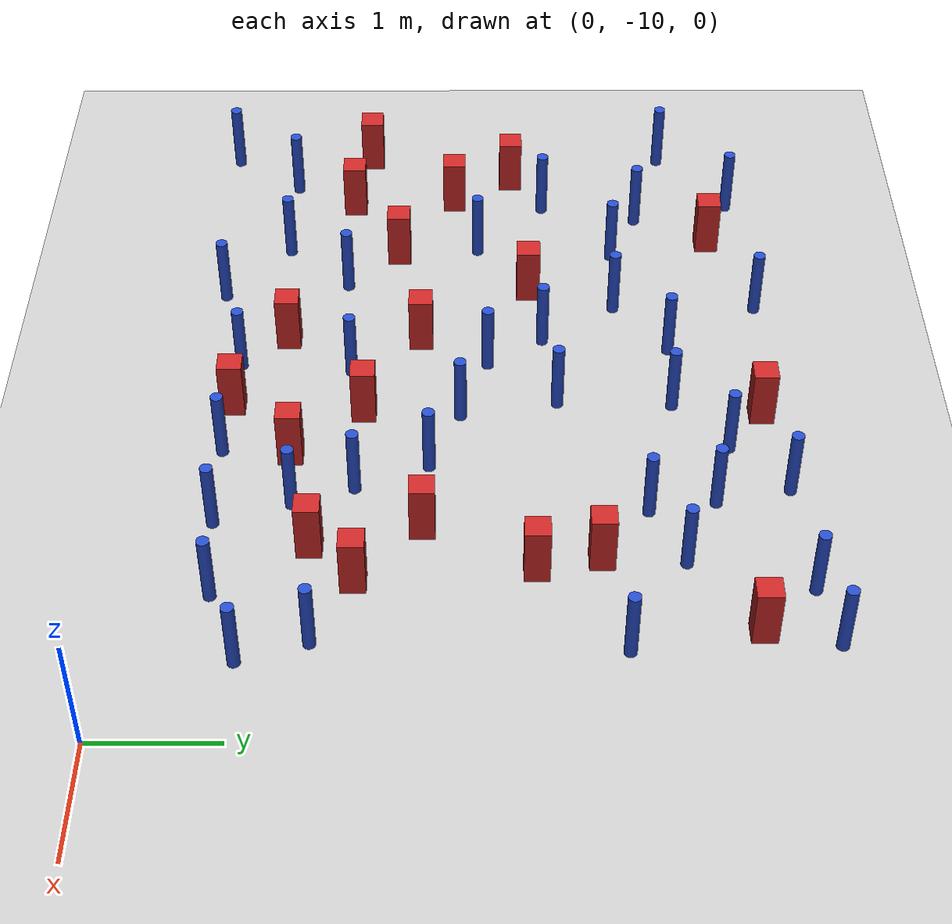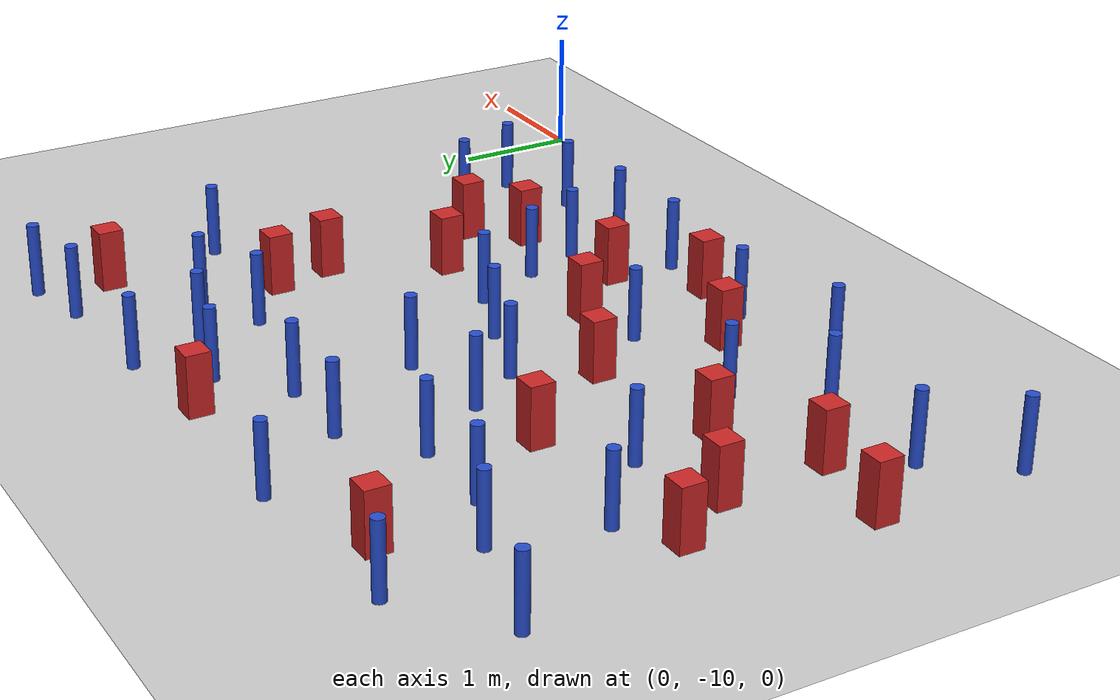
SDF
<sdf version="1.6">
 <world name="default">
  <model name="ground_plane">
   <static>1</static>
   <link name="link">
    <collision name="collision">
     <geometry><plane><normal>0 0 1</normal><size>100 100</size></plane></geometry>
     <surface><friction><ode><mu>100</mu><mu2>50</mu2></ode></friction></surface>
    </collision>
    <visual name="visual">
     <cast_shadows>0</cast_shadows>
     <geometry><plane><normal>0 0 1</normal><size>100 100</size></plane></geometry>
     <material>
      <ambient>1.0 1.0 1.0 1.0</ambient>
      <diffuse>0.8 0.8 0.8 1.0</diffuse>
      <specular>0.01 0.01 0.01 1.000000</specular>
     </material>
    </visual>
   </link>
  </model>
  <model name="square_post_obstacle4">
   <static>true</static>
   <pose>-3.38604297422 -4.9030827757 8.22691968438e-08 7.22125133819e-06 -7.54495500217e-07 2.29674213826e-05</pose>
   <link name="link">
    <pose>0 0 0.25 0 -0 0</pose>
    <inertial>
     <mass>100</mass>
     <inertia>
      <ixx>0.166667</ixx>
      <ixy>0</ixy>
      <ixz>0</ixz>
      <iyy>0.166667</iyy>
      <iyz>0</iyz>
      <izz>0.166667</izz>
     </inertia>
    </inertial>
    <collision name="collision"><geometry><box><size>.2 .2 .5</size></box></geometry></collision>
    <visual name="visual">
     <geometry><box><size>.2 .2 .5</size></box></geometry>
     <material>
      <script><name>Gazebo/Red</name><uri>file://media/materials/scripts/gazebo.material</uri></script>
     </material>
    </visual>
   </link>
  </model>
  <model name="pole_obstacle5">
   <static>true</static>
   <pose>-4.0076121832 -9.21498597755 2.88873142074e-08 -9.90536689695e-09 4.60219948993e-07 -1.20965994957e-07</pose>
   <link name="link">
    <pose>0 0 0.3 0 -0 0</pose>
    <inertial>
     <mass>1</mass>
     <inertia><ixx>0.145833</ixx><ixy>0</ixy><ixz>0</ixz><iyy>0.145833</iyy><iyz>0</iyz><izz>0.125</izz></inertia>
    </inertial>
    <collision name="collision">
     <geometry><cylinder><radius>0.05</radius><length>.6</length></cylinder></geometry>
    </collision>
    <visual name="visual">
     <geometry><cylinder><radius>0.05</radius><length>.6</length></cylinder></geometry>
     <material>
      <script><name>Gazebo/Blue</name><uri>file://media/materials/scripts/gazebo.material</uri></script>
     </material>
    </visual>
   </link>
  </model>
  <model name="square_post_obstacle8">
   <static>true</static>
   <pose>-1.00973284408 -5.13634790479 8.22691968438e-08 7.2212513382e-06 -7.54495500217e-07 2.29674213826e-05</pose>
   <link name="link">
    <pose>0 0 0.25 0 -0 0</pose>
    <inertial>
     <mass>100</mass>
     <inertia>
      <ixx>0.166667</ixx>
      <ixy>0</ixy>
      <ixz>0</ixz>
      <iyy>0.166667</iyy>
      <iyz>0</iyz>
      <izz>0.166667</izz>
     </inertia>
    </inertial>
    <collision name="collision"><geometry><box><size>.2 .2 .5</size></box></geometry></collision>
    <visual name="visual">
     <geometry><box><size>.2 .2 .5</size></box></geometry>
     <material>
      <script><name>Gazebo/Red</name><uri>file://media/materials/scripts/gazebo.material</uri></script>
     </material>
    </visual>
   </link>
  </model>
  <model name="square_post_obstacle9">
   <static>true</static>
   <pose>-1.50824096841 -8.1657535437 8.22691968438e-08 7.22125133819e-06 -7.54495500217e-07 2.29674213826e-05</pose>
   <link name="link">
    <pose>0 0 0.25 0 -0 0</pose>
    <inertial>
     <mass>100</mass>
     <inertia>
      <ixx>0.166667</ixx>
      <ixy>0</ixy>
      <ixz>0</ixz>
      <iyy>0.166667</iyy>
      <iyz>0</iyz>
      <izz>0.166667</izz>
     </inertia>
    </inertial>
    <collision name="collision"><geometry><box><size>.2 .2 .5</size></box></geometry></collision>
    <visual name="visual">
     <geometry><box><size>.2 .2 .5</size></box></geometry>
     <material>
      <script><name>Gazebo/Red</name><uri>file://media/materials/scripts/gazebo.material</uri></script>
     </material>
    </visual>
   </link>
  </model>
  <model name="pole_obstacle8">
   <static>true</static>
   <pose>-6.98964618681 -5.51536909973 2.88873142074e-08 -9.90536690842e-09 4.60219948965e-07 -1.20965994976e-07</pose>
   <link name="link">
    <pose>0 0 0.3 0 -0 0</pose>
    <inertial>
     <mass>1</mass>
     <inertia><ixx>0.145833</ixx><ixy>0</ixy><ixz>0</ixz><iyy>0.145833</iyy><iyz>0</iyz><izz>0.125</izz></inertia>
    </inertial>
    <collision name="collision">
     <geometry><cylinder><radius>0.05</radius><length>.6</length></cylinder></geometry>
    </collision>
    <visual name="visual">
     <geometry><cylinder><radius>0.05</radius><length>.6</length></cylinder></geometry>
     <material>
      <script><name>Gazebo/Blue</name><uri>file://media/materials/scripts/gazebo.material</uri></script>
     </material>
    </visual>
   </link>
  </model>
  <model name="pole_obstacle10">
   <static>true</static>
   <pose>-4.7581580819 -4.81862895062 2.88873142074e-08 -9.90536690842e-09 4.60219948965e-07 -1.20965994976e-07</pose>
   <link name="link">
    <pose>0 0 0.3 0 -0 0</pose>
    <inertial>
     <mass>1</mass>
     <inertia><ixx>0.145833</ixx><ixy>0</ixy><ixz>0</ixz><iyy>0.145833</iyy><iyz>0</iyz><izz>0.125</izz></inertia>
    </inertial>
    <collision name="collision">
     <geometry><cylinder><radius>0.05</radius><length>.6</length></cylinder></geometry>
    </collision>
    <visual name="visual">
     <geometry><cylinder><radius>0.05</radius><length>.6</length></cylinder></geometry>
     <material>
      <script><name>Gazebo/Blue</name><uri>file://media/materials/scripts/gazebo.material</uri></script>
     </material>
    </visual>
   </link>
  </model>
  <model name="pole_obstacle11">
   <static>true</static>
   <pose>-5.08012012069 -8.36202532371 2.88873142074e-08 -9.9053668967e-09 4.60219948993e-07 -1.20965994957e-07</pose>
   <link name="link">
    <pose>0 0 0.3 0 -0 0</pose>
    <inertial>
     <mass>1</mass>
     <inertia><ixx>0.145833</ixx><ixy>0</ixy><ixz>0</ixz><iyy>0.145833</iyy><iyz>0</iyz><izz>0.125</izz></inertia>
    </inertial>
    <collision name="collision">
     <geometry><cylinder><radius>0.05</radius><length>.6</length></cylinder></geometry>
    </collision>
    <visual name="visual">
     <geometry><cylinder><radius>0.05</radius><length>.6</length></cylinder></geometry>
     <material>
      <script><name>Gazebo/Blue</name><uri>file://media/materials/scripts/gazebo.material</uri></script>
     </material>
    </visual>
   </link>
  </model>
  <model name="square_post_obstacle20">
   <static>true</static>
   <pose>-5.6932536082 -5.16046962616 8.22691968438e-08 7.22125133819e-06 -7.54495500217e-07 2.29674213826e-05</pose>
   <link name="link">
    <pose>0 0 0.25 0 -0 0</pose>
    <inertial>
     <mass>100</mass>
     <inertia>
      <ixx>0.166667</ixx>
      <ixy>0</ixy>
      <ixz>0</ixz>
      <iyy>0.166667</iyy>
      <iyz>0</iyz>
      <izz>0.166667</izz>
     </inertia>
    </inertial>
    <collision name="collision"><geometry><box><size>.2 .2 .5</size></box></geometry></collision>
    <visual name="visual">
     <geometry><box><size>.2 .2 .5</size></box></geometry>
     <material>
      <script><name>Gazebo/Red</name><uri>file://media/materials/scripts/gazebo.material</uri></script>
     </material>
    </visual>
   </link>
  </model>
  <model name="square_post_obstacle25">
   <static>true</static>
   <pose>-4.33340341161 -8.83346983936 8.22691968438e-08 7.22125133819e-06 -7.54495500217e-07 2.29674213826e-05</pose>
   <link name="link">
    <pose>0 0 0.25 0 -0 0</pose>
    <inertial>
     <mass>100</mass>
     <inertia>
      <ixx>0.166667</ixx>
      <ixy>0</ixy>
      <ixz>0</ixz>
      <iyy>0.166667</iyy>
      <iyz>0</iyz>
      <izz>0.166667</izz>
     </inertia>
    </inertial>
    <collision name="collision"><geometry><box><size>.2 .2 .5</size></box></geometry></collision>
    <visual name="visual">
     <geometry><box><size>.2 .2 .5</size></box></geometry>
     <material>
      <script><name>Gazebo/Red</name><uri>file://media/materials/scripts/gazebo.material</uri></script>
     </material>
    </visual>
   </link>
  </model>
  <model name="pole_obstacle18">
   <static>true</static>
   <pose>-3.52627339107 -6.57142891999 2.88873142074e-08 -9.90536689859e-09 4.60219948989e-07 -1.20965994961e-07</pose>
   <link name="link">
    <pose>0 0 0.3 0 -0 0</pose>
    <inertial>
     <mass>1</mass>
     <inertia><ixx>0.145833</ixx><ixy>0</ixy><ixz>0</ixz><iyy>0.145833</iyy><iyz>0</iyz><izz>0.125</izz></inertia>
    </inertial>
    <collision name="collision">
     <geometry><cylinder><radius>0.05</radius><length>.6</length></cylinder></geometry>
    </collision>
    <visual name="visual">
     <geometry><cylinder><radius>0.05</radius><length>.6</length></cylinder></geometry>
     <material>
      <script><name>Gazebo/Blue</name><uri>file://media/materials/scripts/gazebo.material</uri></script>
     </material>
    </visual>
   </link>
  </model>
  <model name="pole_obstacle19">
   <static>true</static>
   <pose>-2.25952722871 -5.89378732629 2.88873142074e-08 -9.90536689859e-09 4.60219948989e-07 -1.20965994961e-07</pose>
   <link name="link">
    <pose>0 0 0.3 0 -0 0</pose>
    <inertial>
     <mass>1</mass>
     <inertia><ixx>0.145833</ixx><ixy>0</ixy><ixz>0</ixz><iyy>0.145833</iyy><iyz>0</iyz><izz>0.125</izz></inertia>
    </inertial>
    <collision name="collision">
     <geometry><cylinder><radius>0.05</radius><length>.6</length></cylinder></geometry>
    </collision>
    <visual name="visual">
     <geometry><cylinder><radius>0.05</radius><length>.6</length></cylinder></geometry>
     <material>
      <script><name>Gazebo/Blue</name><uri>file://media/materials/scripts/gazebo.material</uri></script>
     </material>
    </visual>
   </link>
  </model>
  <model name="square_post_obstacle35">
   <static>true</static>
   <pose>-1.7408760265 -6.28655073493 8.22691968438e-08 7.2212513382e-06 -7.54495500217e-07 2.29674213826e-05</pose>
   <link name="link">
    <pose>0 0 0.25 0 -0 0</pose>
    <inertial>
     <mass>100</mass>
     <inertia>
      <ixx>0.166667</ixx>
      <ixy>0</ixy>
      <ixz>0</ixz>
      <iyy>0.166667</iyy>
      <iyz>0</iyz>
      <izz>0.166667</izz>
     </inertia>
    </inertial>
    <collision name="collision"><geometry><box><size>.2 .2 .5</size></box></geometry></collision>
    <visual name="visual">
     <geometry><box><size>.2 .2 .5</size></box></geometry>
     <material>
      <script><name>Gazebo/Red</name><uri>file://media/materials/scripts/gazebo.material</uri></script>
     </material>
    </visual>
   </link>
  </model>
  <model name="pole_obstacle36">
   <static>true</static>
   <pose>-2.13922580885 -9.28516308419 2.88873142074e-08 -9.90536692318e-09 4.6021994893e-07 -1.20965994988e-07</pose>
   <link name="link">
    <pose>0 0 0.3 0 -0 0</pose>
    <inertial>
     <mass>1</mass>
     <inertia><ixx>0.145833</ixx><ixy>0</ixy><ixz>0</ixz><iyy>0.145833</iyy><iyz>0</iyz><izz>0.125</izz></inertia>
    </inertial>
    <collision name="collision">
     <geometry><cylinder><radius>0.05</radius><length>.6</length></cylinder></geometry>
    </collision>
    <visual name="visual">
     <geometry><cylinder><radius>0.05</radius><length>.6</length></cylinder></geometry>
     <material>
      <script><name>Gazebo/Blue</name><uri>file://media/materials/scripts/gazebo.material</uri></script>
     </material>
    </visual>
   </link>
  </model>
  <model name="square_post_obstacle36">
   <static>true</static>
   <pose>-6.63683368596 -6.91825801913 8.22691968438e-08 7.22125133819e-06 -7.54495500217e-07 2.29674213826e-05</pose>
   <link name="link">
    <pose>0 0 0.25 0 -0 0</pose>
    <inertial>
     <mass>100</mass>
     <inertia>
      <ixx>0.166667</ixx>
      <ixy>0</ixy>
      <ixz>0</ixz>
      <iyy>0.166667</iyy>
      <iyz>0</iyz>
      <izz>0.166667</izz>
     </inertia>
    </inertial>
    <collision name="collision"><geometry><box><size>.2 .2 .5</size></box></geometry></collision>
    <visual name="visual">
     <geometry><box><size>.2 .2 .5</size></box></geometry>
     <material>
      <script><name>Gazebo/Red</name><uri>file://media/materials/scripts/gazebo.material</uri></script>
     </material>
    </visual>
   </link>
  </model>
  <model name="pole_obstacle40">
   <static>true</static>
   <pose>-5.58109486869 -8.90177024138 2.88873142074e-08 -9.9053668967e-09 4.60219948993e-07 -1.20965994957e-07</pose>
   <link name="link">
    <pose>0 0 0.3 0 -0 0</pose>
    <inertial>
     <mass>1</mass>
     <inertia><ixx>0.145833</ixx><ixy>0</ixy><ixz>0</ixz><iyy>0.145833</iyy><iyz>0</iyz><izz>0.125</izz></inertia>
    </inertial>
    <collision name="collision">
     <geometry><cylinder><radius>0.05</radius><length>.6</length></cylinder></geometry>
    </collision>
    <visual name="visual">
     <geometry><cylinder><radius>0.05</radius><length>.6</length></cylinder></geometry>
     <material>
      <script><name>Gazebo/Blue</name><uri>file://media/materials/scripts/gazebo.material</uri></script>
     </material>
    </visual>
   </link>
  </model>
  <model name="pole_obstacle50">
   <static>true</static>
   <pose>-4.33049621309 -6.6751644631 2.88873142074e-08 -9.90536690842e-09 4.60219948965e-07 -1.20965994976e-07</pose>
   <link name="link">
    <pose>0 0 0.3 0 -0 0</pose>
    <inertial>
     <mass>1</mass>
     <inertia><ixx>0.145833</ixx><ixy>0</ixy><ixz>0</ixz><iyy>0.145833</iyy><iyz>0</iyz><izz>0.125</izz></inertia>
    </inertial>
    <collision name="collision">
     <geometry><cylinder><radius>0.05</radius><length>.6</length></cylinder></geometry>
    </collision>
    <visual name="visual">
     <geometry><cylinder><radius>0.05</radius><length>.6</length></cylinder></geometry>
     <material>
      <script><name>Gazebo/Blue</name><uri>file://media/materials/scripts/gazebo.material</uri></script>
     </material>
    </visual>
   </link>
  </model>
  <model name="square_post_obstacle54">
   <static>true</static>
   <pose>-2.06954725274 -7.65669839443 8.22691968438e-08 7.22125133819e-06 -7.54495500217e-07 2.29674213826e-05</pose>
   <link name="link">
    <pose>0 0 0.25 0 -0 0</pose>
    <inertial>
     <mass>100</mass>
     <inertia>
      <ixx>0.166667</ixx>
      <ixy>0</ixy>
      <ixz>0</ixz>
      <iyy>0.166667</iyy>
      <iyz>0</iyz>
      <izz>0.166667</izz>
     </inertia>
    </inertial>
    <collision name="collision"><geometry><box><size>.2 .2 .5</size></box></geometry></collision>
    <visual name="visual">
     <geometry><box><size>.2 .2 .5</size></box></geometry>
     <material>
      <script><name>Gazebo/Red</name><uri>file://media/materials/scripts/gazebo.material</uri></script>
     </material>
    </visual>
   </link>
  </model>
  <model name="square_post_obstacle57">
   <static>true</static>
   <pose>-3.40886149084 -8.15950958121 8.22691968438e-08 7.22125133819e-06 -7.54495500217e-07 2.29674213826e-05</pose>
   <link name="link">
    <pose>0 0 0.25 0 -0 0</pose>
    <inertial>
     <mass>100</mass>
     <inertia>
      <ixx>0.166667</ixx>
      <ixy>0</ixy>
      <ixz>0</ixz>
      <iyy>0.166667</iyy>
      <iyz>0</iyz>
      <izz>0.166667</izz>
     </inertia>
    </inertial>
    <collision name="collision"><geometry><box><size>.2 .2 .5</size></box></geometry></collision>
    <visual name="visual">
     <geometry><box><size>.2 .2 .5</size></box></geometry>
     <material>
      <script><name>Gazebo/Red</name><uri>file://media/materials/scripts/gazebo.material</uri></script>
     </material>
    </visual>
   </link>
  </model>
  <model name="pole_obstacle63">
   <static>true</static>
   <pose>-3.49381040476 -5.62563364195 2.88873142074e-08 -9.90536689859e-09 4.60219948989e-07 -1.20965994961e-07</pose>
   <link name="link">
    <pose>0 0 0.3 0 -0 0</pose>
    <inertial>
     <mass>1</mass>
     <inertia><ixx>0.145833</ixx><ixy>0</ixy><ixz>0</ixz><iyy>0.145833</iyy><iyz>0</iyz><izz>0.125</izz></inertia>
    </inertial>
    <collision name="collision">
     <geometry><cylinder><radius>0.05</radius><length>.6</length></cylinder></geometry>
    </collision>
    <visual name="visual">
     <geometry><cylinder><radius>0.05</radius><length>.6</length></cylinder></geometry>
     <material>
      <script><name>Gazebo/Blue</name><uri>file://media/materials/scripts/gazebo.material</uri></script>
     </material>
    </visual>
   </link>
  </model>
  <model name="square_post_obstacle72">
   <static>true</static>
   <pose>-6.24935014309 -8.34504986974 8.22691968438e-08 7.22125133819e-06 -7.54495500217e-07 2.29674213826e-05</pose>
   <link name="link">
    <pose>0 0 0.25 0 -0 0</pose>
    <inertial>
     <mass>100</mass>
     <inertia>
      <ixx>0.166667</ixx>
      <ixy>0</ixy>
      <ixz>0</ixz>
      <iyy>0.166667</iyy>
      <iyz>0</iyz>
      <izz>0.166667</izz>
     </inertia>
    </inertial>
    <collision name="collision"><geometry><box><size>.2 .2 .5</size></box></geometry></collision>
    <visual name="visual">
     <geometry><box><size>.2 .2 .5</size></box></geometry>
     <material>
      <script><name>Gazebo/Red</name><uri>file://media/materials/scripts/gazebo.material</uri></script>
     </material>
    </visual>
   </link>
  </model>
  <model name="pole_obstacle71">
   <static>true</static>
   <pose>-6.04131828479 -5.78652419856 2.88873142074e-08 -9.90536690842e-09 4.60219948965e-07 -1.20965994976e-07</pose>
   <link name="link">
    <pose>0 0 0.3 0 -0 0</pose>
    <inertial>
     <mass>1</mass>
     <inertia><ixx>0.145833</ixx><ixy>0</ixy><ixz>0</ixz><iyy>0.145833</iyy><iyz>0</iyz><izz>0.125</izz></inertia>
    </inertial>
    <collision name="collision">
     <geometry><cylinder><radius>0.05</radius><length>.6</length></cylinder></geometry>
    </collision>
    <visual name="visual">
     <geometry><cylinder><radius>0.05</radius><length>.6</length></cylinder></geometry>
     <material>
      <script><name>Gazebo/Blue</name><uri>file://media/materials/scripts/gazebo.material</uri></script>
     </material>
    </visual>
   </link>
  </model>
  <model name="square_post_obstacle76">
   <static>true</static>
   <pose>-5.50835516522 -7.92259290468 8.22691968438e-08 7.2212513382e-06 -7.54495500217e-07 2.29674213826e-05</pose>
   <link name="link">
    <pose>0 0 0.25 0 -0 0</pose>
    <inertial>
     <mass>100</mass>
     <inertia>
      <ixx>0.166667</ixx>
      <ixy>0</ixy>
      <ixz>0</ixz>
      <iyy>0.166667</iyy>
      <iyz>0</iyz>
      <izz>0.166667</izz>
     </inertia>
    </inertial>
    <collision name="collision"><geometry><box><size>.2 .2 .5</size></box></geometry></collision>
    <visual name="visual">
     <geometry><box><size>.2 .2 .5</size></box></geometry>
     <material>
      <script><name>Gazebo/Red</name><uri>file://media/materials/scripts/gazebo.material</uri></script>
     </material>
    </visual>
   </link>
  </model>
  <model name="pole_obstacle73">
   <static>true</static>
   <pose>-1.37523053038 -9.23376306581 2.88873142074e-08 -9.90536690474e-09 4.60219948974e-07 -1.2096599497e-07</pose>
   <link name="link">
    <pose>0 0 0.3 0 -0 0</pose>
    <inertial>
     <mass>1</mass>
     <inertia><ixx>0.145833</ixx><ixy>0</ixy><ixz>0</ixz><iyy>0.145833</iyy><iyz>0</iyz><izz>0.125</izz></inertia>
    </inertial>
    <collision name="collision">
     <geometry><cylinder><radius>0.05</radius><length>.6</length></cylinder></geometry>
    </collision>
    <visual name="visual">
     <geometry><cylinder><radius>0.05</radius><length>.6</length></cylinder></geometry>
     <material>
      <script><name>Gazebo/Blue</name><uri>file://media/materials/scripts/gazebo.material</uri></script>
     </material>
    </visual>
   </link>
  </model>
  <model name="pole_obstacle74">
   <static>true</static>
   <pose>-2.34456649902 -8.68729376222 2.88873142074e-08 -9.90536692318e-09 4.6021994893e-07 -1.20965994988e-07</pose>
   <link name="link">
    <pose>0 0 0.3 0 -0 0</pose>
    <inertial>
     <mass>1</mass>
     <inertia><ixx>0.145833</ixx><ixy>0</ixy><ixz>0</ixz><iyy>0.145833</iyy><iyz>0</iyz><izz>0.125</izz></inertia>
    </inertial>
    <collision name="collision">
     <geometry><cylinder><radius>0.05</radius><length>.6</length></cylinder></geometry>
    </collision>
    <visual name="visual">
     <geometry><cylinder><radius>0.05</radius><length>.6</length></cylinder></geometry>
     <material>
      <script><name>Gazebo/Blue</name><uri>file://media/materials/scripts/gazebo.material</uri></script>
     </material>
    </visual>
   </link>
  </model>
  <model name="square_post_obstacle77">
   <static>true</static>
   <pose>-1.6246115183 -6.78455563327 8.22691968438e-08 7.2212513382e-06 -7.54495500217e-07 2.29674213826e-05</pose>
   <link name="link">
    <pose>0 0 0.25 0 -0 0</pose>
    <inertial>
     <mass>100</mass>
     <inertia>
      <ixx>0.166667</ixx>
      <ixy>0</ixy>
      <ixz>0</ixz>
      <iyy>0.166667</iyy>
      <iyz>0</iyz>
      <izz>0.166667</izz>
     </inertia>
    </inertial>
    <collision name="collision"><geometry><box><size>.2 .2 .5</size></box></geometry></collision>
    <visual name="visual">
     <geometry><box><size>.2 .2 .5</size></box></geometry>
     <material>
      <script><name>Gazebo/Red</name><uri>file://media/materials/scripts/gazebo.material</uri></script>
     </material>
    </visual>
   </link>
  </model>
  <model name="pole_obstacle84">
   <static>true</static>
   <pose>-5.58741359064 -7.22401803554 2.88873142074e-08 -9.90536690842e-09 4.60219948965e-07 -1.20965994976e-07</pose>
   <link name="link">
    <pose>0 0 0.3 0 -0 0</pose>
    <inertial>
     <mass>1</mass>
     <inertia><ixx>0.145833</ixx><ixy>0</ixy><ixz>0</ixz><iyy>0.145833</iyy><iyz>0</iyz><izz>0.125</izz></inertia>
    </inertial>
    <collision name="collision">
     <geometry><cylinder><radius>0.05</radius><length>.6</length></cylinder></geometry>
    </collision>
    <visual name="visual">
     <geometry><cylinder><radius>0.05</radius><length>.6</length></cylinder></geometry>
     <material>
      <script><name>Gazebo/Blue</name><uri>file://media/materials/scripts/gazebo.material</uri></script>
     </material>
    </visual>
   </link>
  </model>
  <model name="square_post_obstacle85">
   <static>true</static>
   <pose>-6.30888169768 -7.4351578205 8.22691968438e-08 7.2212513382e-06 -7.54495500217e-07 2.29674213826e-05</pose>
   <link name="link">
    <pose>0 0 0.25 0 -0 0</pose>
    <inertial>
     <mass>100</mass>
     <inertia>
      <ixx>0.166667</ixx>
      <ixy>0</ixy>
      <ixz>0</ixz>
      <iyy>0.166667</iyy>
      <iyz>0</iyz>
      <izz>0.166667</izz>
     </inertia>
    </inertial>
    <collision name="collision"><geometry><box><size>.2 .2 .5</size></box></geometry></collision>
    <visual name="visual">
     <geometry><box><size>.2 .2 .5</size></box></geometry>
     <material>
      <script><name>Gazebo/Red</name><uri>file://media/materials/scripts/gazebo.material</uri></script>
     </material>
    </visual>
   </link>
  </model>
  <model name="pole_obstacle101">
   <static>true</static>
   <pose>-0.885728746833 -4.57095657294 2.88873142074e-08 -9.90536689661e-09 4.60219948993e-07 -1.20965994957e-07</pose>
   <link name="link">
    <pose>0 0 0.3 0 -0 0</pose>
    <inertial>
     <mass>1</mass>
     <inertia><ixx>0.145833</ixx><ixy>0</ixy><ixz>0</ixz><iyy>0.145833</iyy><iyz>0</iyz><izz>0.125</izz></inertia>
    </inertial>
    <collision name="collision">
     <geometry><cylinder><radius>0.05</radius><length>.6</length></cylinder></geometry>
    </collision>
    <visual name="visual">
     <geometry><cylinder><radius>0.05</radius><length>.6</length></cylinder></geometry>
     <material>
      <script><name>Gazebo/Blue</name><uri>file://media/materials/scripts/gazebo.material</uri></script>
     </material>
    </visual>
   </link>
  </model>
  <model name="pole_obstacle104">
   <static>true</static>
   <pose>-4.01537222425 -7.14194477363 2.88873142074e-08 -9.90536691069e-09 4.6021994896e-07 -1.20965994979e-07</pose>
   <link name="link">
    <pose>0 0 0.3 0 -0 0</pose>
    <inertial>
     <mass>1</mass>
     <inertia><ixx>0.145833</ixx><ixy>0</ixy><ixz>0</ixz><iyy>0.145833</iyy><iyz>0</iyz><izz>0.125</izz></inertia>
    </inertial>
    <collision name="collision">
     <geometry><cylinder><radius>0.05</radius><length>.6</length></cylinder></geometry>
    </collision>
    <visual name="visual">
     <geometry><cylinder><radius>0.05</radius><length>.6</length></cylinder></geometry>
     <material>
      <script><name>Gazebo/Blue</name><uri>file://media/materials/scripts/gazebo.material</uri></script>
     </material>
    </visual>
   </link>
  </model>
  <model name="square_post_obstacle99">
   <static>true</static>
   <pose>-4.32437308735 -7.70646804009 8.22691968438e-08 7.22125133819e-06 -7.54495500217e-07 2.29674213826e-05</pose>
   <link name="link">
    <pose>0 0 0.25 0 -0 0</pose>
    <inertial>
     <mass>100</mass>
     <inertia>
      <ixx>0.166667</ixx>
      <ixy>0</ixy>
      <ixz>0</ixz>
      <iyy>0.166667</iyy>
      <iyz>0</iyz>
      <izz>0.166667</izz>
     </inertia>
    </inertial>
    <collision name="collision"><geometry><box><size>.2 .2 .5</size></box></geometry></collision>
    <visual name="visual">
     <geometry><box><size>.2 .2 .5</size></box></geometry>
     <material>
      <script><name>Gazebo/Red</name><uri>file://media/materials/scripts/gazebo.material</uri></script>
     </material>
    </visual>
   </link>
  </model>
  <model name="pole_obstacle114">
   <static>true</static>
   <pose>-0.906882670047 -8.46106526729 2.88873142074e-08 -9.90536690779e-09 4.60219948967e-07 -1.20965994975e-07</pose>
   <link name="link">
    <pose>0 0 0.3 0 -0 0</pose>
    <inertial>
     <mass>1</mass>
     <inertia><ixx>0.145833</ixx><ixy>0</ixy><ixz>0</ixz><iyy>0.145833</iyy><iyz>0</iyz><izz>0.125</izz></inertia>
    </inertial>
    <collision name="collision">
     <geometry><cylinder><radius>0.05</radius><length>.6</length></cylinder></geometry>
    </collision>
    <visual name="visual">
     <geometry><cylinder><radius>0.05</radius><length>.6</length></cylinder></geometry>
     <material>
      <script><name>Gazebo/Blue</name><uri>file://media/materials/scripts/gazebo.material</uri></script>
     </material>
    </visual>
   </link>
  </model>
  <model name="pole_obstacle116">
   <static>true</static>
   <pose>-2.5184419085 -8.19964639302 2.88873142074e-08 -9.90536692318e-09 4.6021994893e-07 -1.20965994988e-07</pose>
   <link name="link">
    <pose>0 0 0.3 0 -0 0</pose>
    <inertial>
     <mass>1</mass>
     <inertia><ixx>0.145833</ixx><ixy>0</ixy><ixz>0</ixz><iyy>0.145833</iyy><iyz>0</iyz><izz>0.125</izz></inertia>
    </inertial>
    <collision name="collision">
     <geometry><cylinder><radius>0.05</radius><length>.6</length></cylinder></geometry>
    </collision>
    <visual name="visual">
     <geometry><cylinder><radius>0.05</radius><length>.6</length></cylinder></geometry>
     <material>
      <script><name>Gazebo/Blue</name><uri>file://media/materials/scripts/gazebo.material</uri></script>
     </material>
    </visual>
   </link>
  </model>
  <model name="pole_obstacle127">
   <static>true</static>
   <pose>-6.25476510607 -4.9282300731 2.88873142074e-08 -9.90536690842e-09 4.60219948965e-07 -1.20965994976e-07</pose>
   <link name="link">
    <pose>0 0 0.3 0 -0 0</pose>
    <inertial>
     <mass>1</mass>
     <inertia><ixx>0.145833</ixx><ixy>0</ixy><ixz>0</ixz><iyy>0.145833</iyy><iyz>0</iyz><izz>0.125</izz></inertia>
    </inertial>
    <collision name="collision">
     <geometry><cylinder><radius>0.05</radius><length>.6</length></cylinder></geometry>
    </collision>
    <visual name="visual">
     <geometry><cylinder><radius>0.05</radius><length>.6</length></cylinder></geometry>
     <material>
      <script><name>Gazebo/Blue</name><uri>file://media/materials/scripts/gazebo.material</uri></script>
     </material>
    </visual>
   </link>
  </model>
  <model name="pole_obstacle133">
   <static>true</static>
   <pose>-6.22435224956 -6.6334862746 2.88873142074e-08 -9.90536690842e-09 4.60219948965e-07 -1.20965994976e-07</pose>
   <link name="link">
    <pose>0 0 0.3 0 -0 0</pose>
    <inertial>
     <mass>1</mass>
     <inertia><ixx>0.145833</ixx><ixy>0</ixy><ixz>0</ixz><iyy>0.145833</iyy><iyz>0</iyz><izz>0.125</izz></inertia>
    </inertial>
    <collision name="collision">
     <geometry><cylinder><radius>0.05</radius><length>.6</length></cylinder></geometry>
    </collision>
    <visual name="visual">
     <geometry><cylinder><radius>0.05</radius><length>.6</length></cylinder></geometry>
     <material>
      <script><name>Gazebo/Blue</name><uri>file://media/materials/scripts/gazebo.material</uri></script>
     </material>
    </visual>
   </link>
  </model>
  <model name="pole_obstacle134">
   <static>true</static>
   <pose>-4.20336727092 -5.60868940058 2.88873142074e-08 -9.90536690842e-09 4.60219948965e-07 -1.20965994976e-07</pose>
   <link name="link">
    <pose>0 0 0.3 0 -0 0</pose>
    <inertial>
     <mass>1</mass>
     <inertia><ixx>0.145833</ixx><ixy>0</ixy><ixz>0</ixz><iyy>0.145833</iyy><iyz>0</iyz><izz>0.125</izz></inertia>
    </inertial>
    <collision name="collision">
     <geometry><cylinder><radius>0.05</radius><length>.6</length></cylinder></geometry>
    </collision>
    <visual name="visual">
     <geometry><cylinder><radius>0.05</radius><length>.6</length></cylinder></geometry>
     <material>
      <script><name>Gazebo/Blue</name><uri>file://media/materials/scripts/gazebo.material</uri></script>
     </material>
    </visual>
   </link>
  </model>
  <model name="pole_obstacle141">
   <static>true</static>
   <pose>-2.49643656235 -4.76325315519 2.88873142074e-08 -9.90536689859e-09 4.60219948989e-07 -1.20965994961e-07</pose>
   <link name="link">
    <pose>0 0 0.3 0 -0 0</pose>
    <inertial>
     <mass>1</mass>
     <inertia><ixx>0.145833</ixx><ixy>0</ixy><ixz>0</ixz><iyy>0.145833</iyy><iyz>0</iyz><izz>0.125</izz></inertia>
    </inertial>
    <collision name="collision">
     <geometry><cylinder><radius>0.05</radius><length>.6</length></cylinder></geometry>
    </collision>
    <visual name="visual">
     <geometry><cylinder><radius>0.05</radius><length>.6</length></cylinder></geometry>
     <material>
      <script><name>Gazebo/Blue</name><uri>file://media/materials/scripts/gazebo.material</uri></script>
     </material>
    </visual>
   </link>
  </model>
  <model name="pole_obstacle142">
   <static>true</static>
   <pose>-0.825259598768 -6.12207533292 2.88873142074e-08 -9.90536689661e-09 4.60219948993e-07 -1.20965994957e-07</pose>
   <link name="link">
    <pose>0 0 0.3 0 -0 0</pose>
    <inertial>
     <mass>1</mass>
     <inertia><ixx>0.145833</ixx><ixy>0</ixy><ixz>0</ixz><iyy>0.145833</iyy><iyz>0</iyz><izz>0.125</izz></inertia>
    </inertial>
    <collision name="collision">
     <geometry><cylinder><radius>0.05</radius><length>.6</length></cylinder></geometry>
    </collision>
    <visual name="visual">
     <geometry><cylinder><radius>0.05</radius><length>.6</length></cylinder></geometry>
     <material>
      <script><name>Gazebo/Blue</name><uri>file://media/materials/scripts/gazebo.material</uri></script>
     </material>
    </visual>
   </link>
  </model>
  <model name="square_post_obstacle130">
   <static>true</static>
   <pose>-2.90064927158 -8.72688062211 8.22691968438e-08 7.22125133819e-06 -7.54495500217e-07 2.29674213826e-05</pose>
   <link name="link">
    <pose>0 0 0.25 0 -0 0</pose>
    <inertial>
     <mass>100</mass>
     <inertia>
      <ixx>0.166667</ixx>
      <ixy>0</ixy>
      <ixz>0</ixz>
      <iyy>0.166667</iyy>
      <iyz>0</iyz>
      <izz>0.166667</izz>
     </inertia>
    </inertial>
    <collision name="collision"><geometry><box><size>.2 .2 .5</size></box></geometry></collision>
    <visual name="visual">
     <geometry><box><size>.2 .2 .5</size></box></geometry>
     <material>
      <script><name>Gazebo/Red</name><uri>file://media/materials/scripts/gazebo.material</uri></script>
     </material>
    </visual>
   </link>
  </model>
  <model name="pole_obstacle147">
   <static>true</static>
   <pose>-0.728901383164 -8.99616999505 2.88873142074e-08 -9.90536690779e-09 4.60219948967e-07 -1.20965994975e-07</pose>
   <link name="link">
    <pose>0 0 0.3 0 -0 0</pose>
    <inertial>
     <mass>1</mass>
     <inertia><ixx>0.145833</ixx><ixy>0</ixy><ixz>0</ixz><iyy>0.145833</iyy><iyz>0</iyz><izz>0.125</izz></inertia>
    </inertial>
    <collision name="collision">
     <geometry><cylinder><radius>0.05</radius><length>.6</length></cylinder></geometry>
    </collision>
    <visual name="visual">
     <geometry><cylinder><radius>0.05</radius><length>.6</length></cylinder></geometry>
     <material>
      <script><name>Gazebo/Blue</name><uri>file://media/materials/scripts/gazebo.material</uri></script>
     </material>
    </visual>
   </link>
  </model>
  <model name="pole_obstacle149">
   <static>true</static>
   <pose>-5.51002526058 -6.03256326072 2.88873142074e-08 -9.90536690842e-09 4.60219948965e-07 -1.20965994976e-07</pose>
   <link name="link">
    <pose>0 0 0.3 0 -0 0</pose>
    <inertial>
     <mass>1</mass>
     <inertia><ixx>0.145833</ixx><ixy>0</ixy><ixz>0</ixz><iyy>0.145833</iyy><iyz>0</iyz><izz>0.125</izz></inertia>
    </inertial>
    <collision name="collision">
     <geometry><cylinder><radius>0.05</radius><length>.6</length></cylinder></geometry>
    </collision>
    <visual name="visual">
     <geometry><cylinder><radius>0.05</radius><length>.6</length></cylinder></geometry>
     <material>
      <script><name>Gazebo/Blue</name><uri>file://media/materials/scripts/gazebo.material</uri></script>
     </material>
    </visual>
   </link>
  </model>
  <model name="pole_obstacle153">
   <static>true</static>
   <pose>-4.76929974459 -6.04763267627 2.88873142074e-08 -9.90536690842e-09 4.60219948965e-07 -1.20965994976e-07</pose>
   <link name="link">
    <pose>0 0 0.3 0 -0 0</pose>
    <inertial>
     <mass>1</mass>
     <inertia><ixx>0.145833</ixx><ixy>0</ixy><ixz>0</ixz><iyy>0.145833</iyy><iyz>0</iyz><izz>0.125</izz></inertia>
    </inertial>
    <collision name="collision">
     <geometry><cylinder><radius>0.05</radius><length>.6</length></cylinder></geometry>
    </collision>
    <visual name="visual">
     <geometry><cylinder><radius>0.05</radius><length>.6</length></cylinder></geometry>
     <material>
      <script><name>Gazebo/Blue</name><uri>file://media/materials/scripts/gazebo.material</uri></script>
     </material>
    </visual>
   </link>
  </model>
  <model name="square_post_obstacle146">
   <static>true</static>
   <pose>-3.49172166824 -9.23940720244 8.22691968438e-08 7.2212513382e-06 -7.54495500217e-07 2.29674213826e-05</pose>
   <link name="link">
    <pose>0 0 0.25 0 -0 0</pose>
    <inertial>
     <mass>100</mass>
     <inertia>
      <ixx>0.166667</ixx>
      <ixy>0</ixy>
      <ixz>0</ixz>
      <iyy>0.166667</iyy>
      <iyz>0</iyz>
      <izz>0.166667</izz>
     </inertia>
    </inertial>
    <collision name="collision"><geometry><box><size>.2 .2 .5</size></box></geometry></collision>
    <visual name="visual">
     <geometry><box><size>.2 .2 .5</size></box></geometry>
     <material>
      <script><name>Gazebo/Red</name><uri>file://media/materials/scripts/gazebo.material</uri></script>
     </material>
    </visual>
   </link>
  </model>
  <model name="square_post_obstacle150">
   <static>true</static>
   <pose>-4.98936459172 -6.78412498281 8.22691968438e-08 7.2212513382e-06 -7.54495500217e-07 2.29674213826e-05</pose>
   <link name="link">
    <pose>0 0 0.25 0 -0 0</pose>
    <inertial>
     <mass>100</mass>
     <inertia>
      <ixx>0.166667</ixx>
      <ixy>0</ixy>
      <ixz>0</ixz>
      <iyy>0.166667</iyy>
      <iyz>0</iyz>
      <izz>0.166667</izz>
     </inertia>
    </inertial>
    <collision name="collision"><geometry><box><size>.2 .2 .5</size></box></geometry></collision>
    <visual name="visual">
     <geometry><box><size>.2 .2 .5</size></box></geometry>
     <material>
      <script><name>Gazebo/Red</name><uri>file://media/materials/scripts/gazebo.material</uri></script>
     </material>
    </visual>
   </link>
  </model>
  <model name="pole_obstacle165">
   <static>true</static>
   <pose>-2.76928114853 -7.61540480488 2.88873142074e-08 -9.90536689859e-09 4.60219948989e-07 -1.20965994961e-07</pose>
   <link name="link">
    <pose>0 0 0.3 0 -0 0</pose>
    <inertial>
     <mass>1</mass>
     <inertia><ixx>0.145833</ixx><ixy>0</ixy><ixz>0</ixz><iyy>0.145833</iyy><iyz>0</iyz><izz>0.125</izz></inertia>
    </inertial>
    <collision name="collision">
     <geometry><cylinder><radius>0.05</radius><length>.6</length></cylinder></geometry>
    </collision>
    <visual name="visual">
     <geometry><cylinder><radius>0.05</radius><length>.6</length></cylinder></geometry>
     <material>
      <script><name>Gazebo/Blue</name><uri>file://media/materials/scripts/gazebo.material</uri></script>
     </material>
    </visual>
   </link>
  </model>
  <model name="pole_obstacle172">
   <static>true</static>
   <pose>-1.43229813375 -4.69552027885 2.88873142074e-08 -9.90536689852e-09 4.60219948989e-07 -1.2096599496e-07</pose>
   <link name="link">
    <pose>0 0 0.3 0 -0 0</pose>
    <inertial>
     <mass>1</mass>
     <inertia><ixx>0.145833</ixx><ixy>0</ixy><ixz>0</ixz><iyy>0.145833</iyy><iyz>0</iyz><izz>0.125</izz></inertia>
    </inertial>
    <collision name="collision">
     <geometry><cylinder><radius>0.05</radius><length>.6</length></cylinder></geometry>
    </collision>
    <visual name="visual">
     <geometry><cylinder><radius>0.05</radius><length>.6</length></cylinder></geometry>
     <material>
      <script><name>Gazebo/Blue</name><uri>file://media/materials/scripts/gazebo.material</uri></script>
     </material>
    </visual>
   </link>
  </model>
  <model name="pole_obstacle179">
   <static>true</static>
   <pose>-6.54280366677 -8.89272875657 2.88873142074e-08 -9.9053668967e-09 4.60219948993e-07 -1.20965994957e-07</pose>
   <link name="link">
    <pose>0 0 0.3 0 -0 0</pose>
    <inertial>
     <mass>1</mass>
     <inertia><ixx>0.145833</ixx><ixy>0</ixy><ixz>0</ixz><iyy>0.145833</iyy><iyz>0</iyz><izz>0.125</izz></inertia>
    </inertial>
    <collision name="collision">
     <geometry><cylinder><radius>0.05</radius><length>.6</length></cylinder></geometry>
    </collision>
    <visual name="visual">
     <geometry><cylinder><radius>0.05</radius><length>.6</length></cylinder></geometry>
     <material>
      <script><name>Gazebo/Blue</name><uri>file://media/materials/scripts/gazebo.material</uri></script>
     </material>
    </visual>
   </link>
  </model>
  <model name="pole_obstacle181">
   <static>true</static>
   <pose>-2.35554443586 -5.36107350444 2.88873142074e-08 -9.90536689859e-09 4.60219948989e-07 -1.20965994961e-07</pose>
   <link name="link">
    <pose>0 0 0.3 0 -0 0</pose>
    <inertial>
     <mass>1</mass>
     <inertia><ixx>0.145833</ixx><ixy>0</ixy><ixz>0</ixz><iyy>0.145833</iyy><iyz>0</iyz><izz>0.125</izz></inertia>
    </inertial>
    <collision name="collision">
     <geometry><cylinder><radius>0.05</radius><length>.6</length></cylinder></geometry>
    </collision>
    <visual name="visual">
     <geometry><cylinder><radius>0.05</radius><length>.6</length></cylinder></geometry>
     <material>
      <script><name>Gazebo/Blue</name><uri>file://media/materials/scripts/gazebo.material</uri></script>
     </material>
    </visual>
   </link>
  </model>
  <model name="square_post_obstacle174">
   <static>true</static>
   <pose>-6.98706534183 -8.20973848207 8.22691968438e-08 7.22125133819e-06 -7.54495500217e-07 2.29674213826e-05</pose>
   <link name="link">
    <pose>0 0 0.25 0 -0 0</pose>
    <inertial>
     <mass>100</mass>
     <inertia>
      <ixx>0.166667</ixx>
      <ixy>0</ixy>
      <ixz>0</ixz>
      <iyy>0.166667</iyy>
      <iyz>0</iyz>
      <izz>0.166667</izz>
     </inertia>
    </inertial>
    <collision name="collision"><geometry><box><size>.2 .2 .5</size></box></geometry></collision>
    <visual name="visual">
     <geometry><box><size>.2 .2 .5</size></box></geometry>
     <material>
      <script><name>Gazebo/Red</name><uri>file://media/materials/scripts/gazebo.material</uri></script>
     </material>
    </visual>
   </link>
  </model>
  <model name="pole_obstacle206">
   <static>true</static>
   <pose>-3.37090876861 -7.3690869507 2.88873142074e-08 -9.90536689859e-09 4.60219948989e-07 -1.20965994961e-07</pose>
   <link name="link">
    <pose>0 0 0.3 0 -0 0</pose>
    <inertial>
     <mass>1</mass>
     <inertia><ixx>0.145833</ixx><ixy>0</ixy><ixz>0</ixz><iyy>0.145833</iyy><iyz>0</iyz><izz>0.125</izz></inertia>
    </inertial>
    <collision name="collision">
     <geometry><cylinder><radius>0.05</radius><length>.6</length></cylinder></geometry>
    </collision>
    <visual name="visual">
     <geometry><cylinder><radius>0.05</radius><length>.6</length></cylinder></geometry>
     <material>
      <script><name>Gazebo/Blue</name><uri>file://media/materials/scripts/gazebo.material</uri></script>
     </material>
    </visual>
   </link>
  </model>
  <model name="pole_obstacle208">
   <static>true</static>
   <pose>-6.97920423438 -9.48068840947 2.88873142074e-08 -9.9053668967e-09 4.60219948993e-07 -1.20965994957e-07</pose>
   <link name="link">
    <pose>0 0 0.3 0 -0 0</pose>
    <inertial>
     <mass>1</mass>
     <inertia><ixx>0.145833</ixx><ixy>0</ixy><ixz>0</ixz><iyy>0.145833</iyy><iyz>0</iyz><izz>0.125</izz></inertia>
    </inertial>
    <collision name="collision">
     <geometry><cylinder><radius>0.05</radius><length>.6</length></cylinder></geometry>
    </collision>
    <visual name="visual">
     <geometry><cylinder><radius>0.05</radius><length>.6</length></cylinder></geometry>
     <material>
      <script><name>Gazebo/Blue</name><uri>file://media/materials/scripts/gazebo.material</uri></script>
     </material>
    </visual>
   </link>
  </model>
  <model name="pole_obstacle210">
   <static>true</static>
   <pose>-3.92921720871 -8.28609471929 2.88873142074e-08 -9.90536692318e-09 4.6021994893e-07 -1.20965994988e-07</pose>
   <link name="link">
    <pose>0 0 0.3 0 -0 0</pose>
    <inertial>
     <mass>1</mass>
     <inertia><ixx>0.145833</ixx><ixy>0</ixy><ixz>0</ixz><iyy>0.145833</iyy><iyz>0</iyz><izz>0.125</izz></inertia>
    </inertial>
    <collision name="collision">
     <geometry><cylinder><radius>0.05</radius><length>.6</length></cylinder></geometry>
    </collision>
    <visual name="visual">
     <geometry><cylinder><radius>0.05</radius><length>.6</length></cylinder></geometry>
     <material>
      <script><name>Gazebo/Blue</name><uri>file://media/materials/scripts/gazebo.material</uri></script>
     </material>
    </visual>
   </link>
  </model>
  <model name="pole_obstacle214">
   <static>true</static>
   <pose>-2.94852543572 -9.28358430563 2.88873142074e-08 -9.90536692318e-09 4.6021994893e-07 -1.20965994988e-07</pose>
   <link name="link">
    <pose>0 0 0.3 0 -0 0</pose>
    <inertial>
     <mass>1</mass>
     <inertia><ixx>0.145833</ixx><ixy>0</ixy><ixz>0</ixz><iyy>0.145833</iyy><iyz>0</iyz><izz>0.125</izz></inertia>
    </inertial>
    <collision name="collision">
     <geometry><cylinder><radius>0.05</radius><length>.6</length></cylinder></geometry>
    </collision>
    <visual name="visual">
     <geometry><cylinder><radius>0.05</radius><length>.6</length></cylinder></geometry>
     <material>
      <script><name>Gazebo/Blue</name><uri>file://media/materials/scripts/gazebo.material</uri></script>
     </material>
    </visual>
   </link>
  </model>
  <model name="square_post_obstacle207">
   <static>true</static>
   <pose>-1.87057526255 -8.51653477996 8.22691968438e-08 7.22125133819e-06 -7.54495500217e-07 2.29674213826e-05</pose>
   <link name="link">
    <pose>0 0 0.25 0 -0 0</pose>
    <inertial>
     <mass>100</mass>
     <inertia>
      <ixx>0.166667</ixx>
      <ixy>0</ixy>
      <ixz>0</ixz>
      <iyy>0.166667</iyy>
      <iyz>0</iyz>
      <izz>0.166667</izz>
     </inertia>
    </inertial>
    <collision name="collision"><geometry><box><size>.2 .2 .5</size></box></geometry></collision>
    <visual name="visual">
     <geometry><box><size>.2 .2 .5</size></box></geometry>
     <material>
      <script><name>Gazebo/Red</name><uri>file://media/materials/scripts/gazebo.material</uri></script>
     </material>
    </visual>
   </link>
  </model>
  <model name="pole_obstacle222">
   <static>true</static>
   <pose>-2.98339999087 -5.20013997959 2.88873142074e-08 -9.90536692062e-09 4.60219948937e-07 -1.20965994985e-07</pose>
   <link name="link">
    <pose>0 0 0.3 0 -0 0</pose>
    <inertial>
     <mass>1</mass>
     <inertia><ixx>0.145833</ixx><ixy>0</ixy><ixz>0</ixz><iyy>0.145833</iyy><iyz>0</iyz><izz>0.125</izz></inertia>
    </inertial>
    <collision name="collision">
     <geometry><cylinder><radius>0.05</radius><length>.6</length></cylinder></geometry>
    </collision>
    <visual name="visual">
     <geometry><cylinder><radius>0.05</radius><length>.6</length></cylinder></geometry>
     <material>
      <script><name>Gazebo/Blue</name><uri>file://media/materials/scripts/gazebo.material</uri></script>
     </material>
    </visual>
   </link>
  </model>
  <model name="pole_obstacle224">
   <static>true</static>
   <pose>-4.93561999087 -9.42906997959 2.88873142074e-08 -9.9053668967e-09 4.60219948993e-07 -1.20965994957e-07</pose>
   <link name="link">
    <pose>0 0 0.3 0 -0 0</pose>
    <inertial>
     <mass>1</mass>
     <inertia><ixx>0.145833</ixx><ixy>0</ixy><ixz>0</ixz><iyy>0.145833</iyy><iyz>0</iyz><izz>0.125</izz></inertia>
    </inertial>
    <collision name="collision">
     <geometry><cylinder><radius>0.05</radius><length>.6</length></cylinder></geometry>
    </collision>
    <visual name="visual">
     <geometry><cylinder><radius>0.05</radius><length>.6</length></cylinder></geometry>
     <material>
      <script><name>Gazebo/Blue</name><uri>file://media/materials/scripts/gazebo.material</uri></script>
     </material>
    </visual>
   </link>
  </model>
  <model name="pole_obstacle230">
   <static>true</static>
   <pose>-1.70541999087 -5.64119997959 2.88873142074e-08 -9.90536689786e-09 4.6021994899e-07 -1.2096599496e-07</pose>
   <link name="link">
    <pose>0 0 0.3 0 -0 0</pose>
    <inertial>
     <mass>1</mass>
     <inertia><ixx>0.145833</ixx><ixy>0</ixy><ixz>0</ixz><iyy>0.145833</iyy><iyz>0</iyz><izz>0.125</izz></inertia>
    </inertial>
    <collision name="collision">
     <geometry><cylinder><radius>0.05</radius><length>.6</length></cylinder></geometry>
    </collision>
    <visual name="visual">
     <geometry><cylinder><radius>0.05</radius><length>.6</length></cylinder></geometry>
     <material>
      <script><name>Gazebo/Blue</name><uri>file://media/materials/scripts/gazebo.material</uri></script>
     </material>
    </visual>
   </link>
  </model>
 </world>
</sdf>
